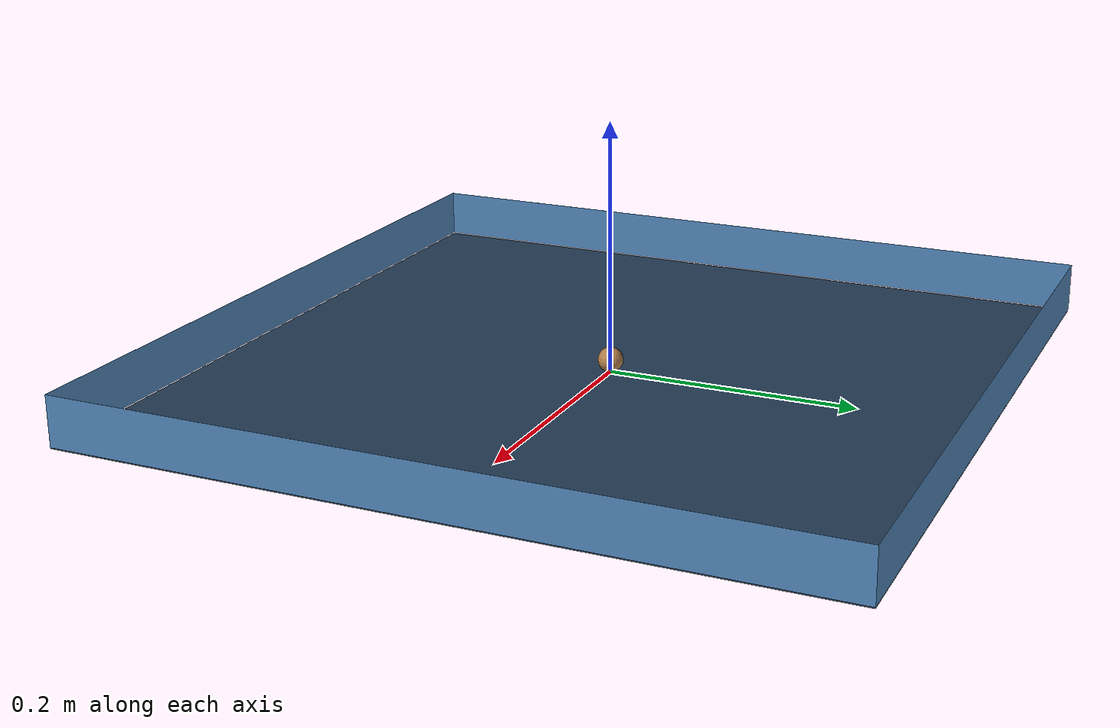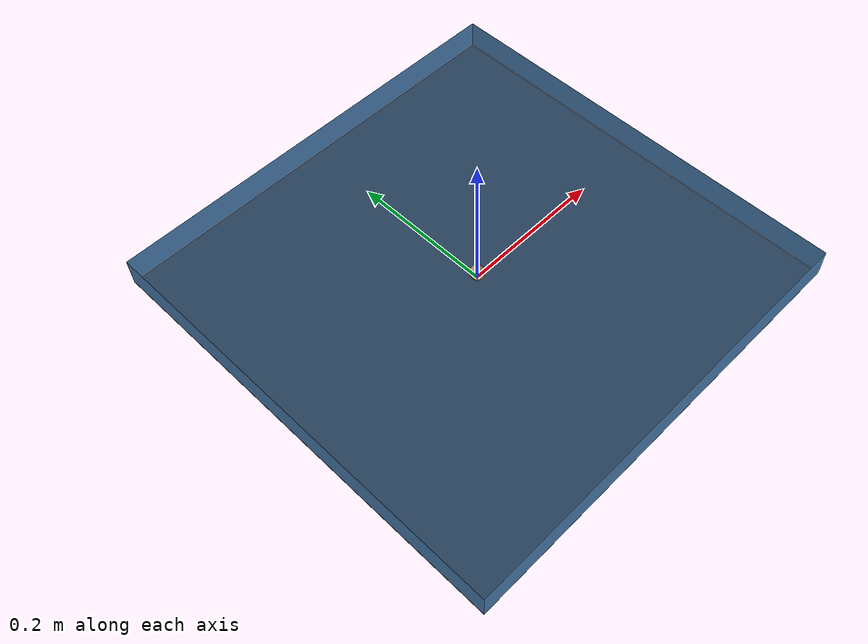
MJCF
<mujoco model="Particle">
  <visual>
    <headlight ambient=".4 .4 .4" diffuse=".8 .8 .8" specular="0.1 0.1 0.1"/>
    <map znear=".01"/>
    <quality shadowsize="2048"/>
  </visual>

  <asset>
    <texture name="skybox" type="skybox" builtin="gradient" rgb1="0 0 0" rgb2="0 0 0"
             width="800" height="800" mark="random" markrgb="0 0 0"/>
  </asset>

  <asset>
      <texture name="grid" type="2d" builtin="checker" rgb1=".1 .2 .3" rgb2=".2 .3 .4" width="300" height="300" mark="edge" markrgb=".2 .3 .4"/>
      <material name="grid" texture="grid" texrepeat="1 1" texuniform="true" reflectance=".2"/>
      <material name="self" rgba=".7 .5 .3 1"/>
      <material name="self_default" rgba=".7 .5 .3 1"/>
      <material name="self_highlight" rgba="0 .5 .3 1"/>
      <material name="effector" rgba=".7 .4 .2 1"/>
      <material name="effector_default" rgba=".7 .4 .2 1"/>
      <material name="effector_highlight" rgba="0 .5 .3 1"/>
      <material name="decoration" rgba=".3 .5 .7 1"/>
      <material name="eye" rgba="0 .2 1 1"/>
      <material name="target" rgba="0 1 0 0.5"/>
      <material name="target_default" rgba=".6 .3 .3 1"/>
      <material name="target_highlight" rgba=".6 .3 .3 .4"/>
      <material name="site" rgba=".5 .5 .5 .3"/>
  </asset>

  <option timestep="0.01">
    <flag contact="disable"/>
  </option>

  <default>
    <joint type="hinge" axis="0 0 1" limited="true" range="-.29 .29" damping="0"/>
    <motor gear=".1" ctrlrange="-1 1" ctrllimited="true"/>
  </default>

  <worldbody>
    <light name="light" pos="0 0 1"/>
    <camera name="fixed" pos="0 0 .75" quat="1 0 0 0"/>
    <geom name="ground" type="plane" pos="0 0 0" size=".3 .3 .1" material="grid"/>
    <geom name="wall_x" type="plane" pos="-.3 0 .02" zaxis="1 0 0"  size=".02 .3 .02" material="decoration"/>
    <geom name="wall_y" type="plane" pos="0 -.3 .02" zaxis="0 1 0"  size=".3 .02 .02" material="decoration"/>
    <geom name="wall_neg_x" type="plane" pos=".3 0 .02" zaxis="-1 0 0"  size=".02 .3 .02" material="decoration"/>
    <geom name="wall_neg_y" type="plane" pos="0 .3 .02" zaxis="0 -1 0"  size=".3 .02 .02" material="decoration"/>

    <body name="pointmass" pos="0 0 .01">
      <camera name="cam0" pos="0 -0.3 0.3" xyaxes="1 0 0 0 0.7 0.7"/>
      <joint name="root_x" type="slide"  pos="0 0 0" axis="1 0 0" />
      <joint name="root_y" type="slide"  pos="0 0 0" axis="0 1 0" />
      <geom name="pointmass" type="sphere" size=".01" material="self" mass=".3"/>
      <site name="tip" pos="0 0 0" size="0.01"/>
    </body>
  </worldbody>

  <actuator>
    <motor name="x_motor" joint="root_x" gear="1" ctrllimited="true" ctrlrange="-1 1"/>
    <motor name="y_motor" joint="root_y" gear="1" ctrllimited="true" ctrlrange="-1 1"/>
  </actuator>

  <sensor>
    <jointpos name="joint_x" joint="root_x" />
    <jointpos name="joint_y" joint="root_y" />
    <jointvel name="velocity_x" joint="root_x" />
    <jointvel name="velocity_y" joint="root_y" />
  </sensor>
</mujoco>
